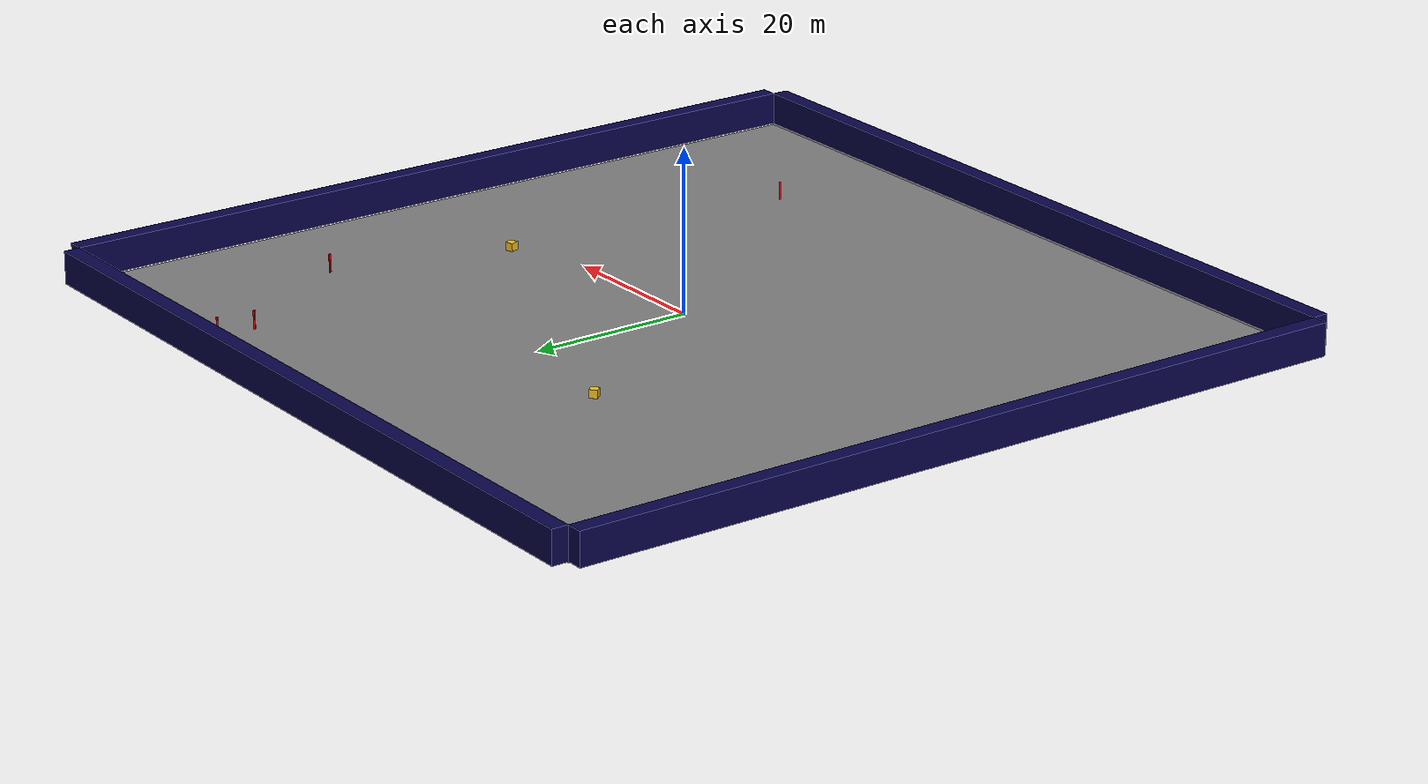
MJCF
<mujoco model="unnamed_model">
  <default>
    <default class="/" />
    <default class="border/" />
    <default class="border_1/" />
    <default class="border_2/" />
    <default class="border_3/" />
    <default class="placeholder/" />
    <default class="agent/" />
    <default class="tree0/" />
    <default class="tree1/" />
    <default class="tree2/" />
    <default class="tree3/" />
  </default>
  <worldbody>
    <body name="border/">
      <body name="border/border" pos="0 51 2">
        <geom name="border/border_geom" class="border/" type="box" size="50 1 2" rgba="0.035000000000000003 0.016 0.28999999999999998 1" />
      </body>
    </body>
    <body name="border_1/">
      <body name="border_1/border" pos="0 -51 2">
        <geom name="border_1/border_geom" class="border_1/" type="box" size="50 1 2" rgba="0.035000000000000003 0.016 0.28999999999999998 1" />
      </body>
    </body>
    <body name="border_2/">
      <body name="border_2/border" pos="51 0 2">
        <geom name="border_2/border_geom" class="border_2/" type="box" size="1 50 2" rgba="0.035000000000000003 0.016 0.28999999999999998 1" />
      </body>
    </body>
    <body name="border_3/">
      <body name="border_3/border" pos="-51 0 2">
        <geom name="border_3/border_geom" class="border_3/" type="box" size="1 50 2" rgba="0.035000000000000003 0.016 0.28999999999999998 1" />
      </body>
    </body>
    <body euler="0 0 -162.44460216573617" name="placeholder/">
      <joint name="placeholder/boxagent_freeJoint/" class="/" type="free" />
      <body name="placeholder/placeholder" pos="-25 0 3" euler="0 0 0">
        <geom name="placeholder/boxagent_geom" class="placeholder/" type="box" size="0.5 0.5 0.5" rgba="0.94899999999999995 0.74509999999999998 0.1333 1" euler="0 0 0" />
      </body>
    </body>
    <body euler="0 0 -52.64381603653554" name="agent/">
      <joint name="agent/boxagent_freeJoint/" class="/" type="free" />
      <body name="agent/agent" pos="-26.998000000000001 1.9022000000000006 0.5" euler="0 0 0">
        <geom name="agent/boxagent_geom" class="agent/" type="box" size="0.5 0.5 0.5" rgba="0.94899999999999995 0.74509999999999998 0.1333 1" euler="0 0 0" />
      </body>
    </body>
    <body name="tree0/">
      <body name="tree0/tree0" pos="24.894500000000004 41.633300000000006 0.10000000000000001" euler="0 0 126.62811373519713">
        <geom name="tree0/tree_geom" class="tree0/" type="box" size="0.10000000000000001 0.10000000000000001 2" rgba="1 0 0 1" />
      </body>
    </body>
    <body name="tree1/">
      <body name="tree1/tree1" pos="25.399699999999999 46.135100000000008 0.10000000000000001" euler="0 0 -43.734529887025786">
        <geom name="tree1/tree_geom" class="tree1/" type="box" size="0.10000000000000001 0.10000000000000001 2" rgba="1 0 0 1" />
      </body>
    </body>
    <body name="tree2/">
      <body name="tree2/tree2" pos="35.881900000000002 24.902500000000003 0.10000000000000001" euler="0 0 -178.22724979102736">
        <geom name="tree2/tree_geom" class="tree2/" type="box" size="0.10000000000000001 0.10000000000000001 2" rgba="1 0 0 1" />
      </body>
    </body>
    <body name="tree3/">
      <body name="tree3/tree3" pos="26.139200000000002 -33.125 0.10000000000000001" euler="0 0 -31.073648159714139">
        <geom name="tree3/tree_geom" class="tree3/" type="box" size="0.10000000000000001 0.10000000000000001 2" rgba="1 0 0 1" />
      </body>
    </body>
    <geom name="base_plane" class="/" type="plane" size="50 50 0.10000000000000001" />
  </worldbody>
</mujoco>
